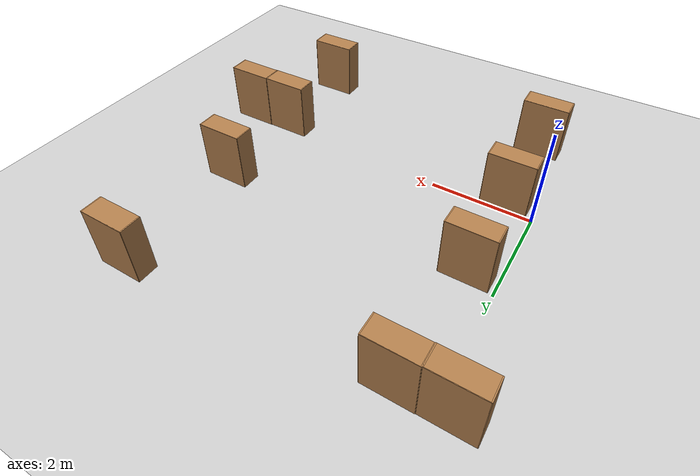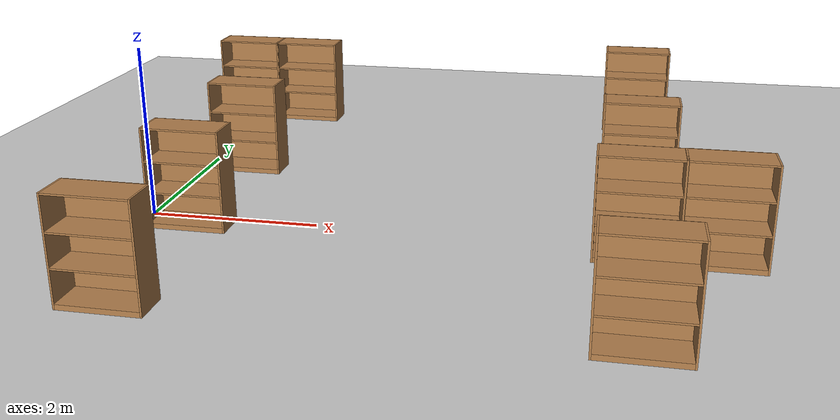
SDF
<sdf version="1.7">
 <world name="default">
  <model name="ground_plane">
   <static>1</static>
   <link name="link">
    <collision name="collision">
     <geometry><plane><normal>0 0 1</normal><size>100 100</size></plane></geometry>
     <surface>
      <contact><collide_bitmask>65535</collide_bitmask></contact>
      <friction><ode><mu>100</mu><mu2>50</mu2></ode></friction>
     </surface>
    </collision>
    <visual name="visual">
     <cast_shadows>0</cast_shadows>
     <geometry><plane><normal>0 0 1</normal><size>100 100</size></plane></geometry>
     <material>
      <script><uri>file://media/materials/scripts/gazebo.material</uri><name>Gazebo/Grey</name></script>
     </material>
    </visual>
   </link>
  </model>
  <model name="bookshelf_clone_0">
   <static>1</static>
   <link name="link">
    <inertial><mass>1</mass></inertial>
    <collision name="back">
     <pose>0 0.005 0.6 0 -0 0</pose>
     <geometry><box><size>0.9 0.01 1.2</size></box></geometry>
    </collision>
    <visual name="visual1">
     <pose>0 0.005 0.6 0 -0 0</pose>
     <geometry><box><size>0.9 0.01 1.2</size></box></geometry>
     <material>
      <script><uri>file://media/materials/scripts/gazebo.material</uri><name>Gazebo/Wood</name></script>
     </material>
    </visual>
    <collision name="left_side">
     <pose>0.45 -0.195 0.6 0 -0 0</pose>
     <geometry><box><size>0.02 0.4 1.2</size></box></geometry>
    </collision>
    <visual name="visual2">
     <pose>0.45 -0.195 0.6 0 -0 0</pose>
     <geometry><box><size>0.02 0.4 1.2</size></box></geometry>
     <material>
      <script><uri>file://media/materials/scripts/gazebo.material</uri><name>Gazebo/Wood</name></script>
     </material>
    </visual>
    <collision name="right_side">
     <pose>-0.45 -0.195 0.6 0 -0 0</pose>
     <geometry><box><size>0.02 0.4 1.2</size></box></geometry>
    </collision>
    <visual name="visual3">
     <pose>-0.45 -0.195 0.6 0 -0 0</pose>
     <geometry><box><size>0.02 0.4 1.2</size></box></geometry>
     <material>
      <script><uri>file://media/materials/scripts/gazebo.material</uri><name>Gazebo/Wood</name></script>
     </material>
    </visual>
    <collision name="bottom">
     <pose>0 -0.195 0.03 0 -0 0</pose>
     <geometry><box><size>0.88 0.4 0.06</size></box></geometry>
    </collision>
    <visual name="visual4">
     <pose>0 -0.195 0.03 0 -0 0</pose>
     <geometry><box><size>0.88 0.4 0.06</size></box></geometry>
     <material>
      <script><uri>file://media/materials/scripts/gazebo.material</uri><name>Gazebo/Wood</name></script>
     </material>
    </visual>
    <collision name="top">
     <pose>0 -0.195 1.19 0 -0 0</pose>
     <geometry><box><size>0.88 0.4 0.02</size></box></geometry>
    </collision>
    <visual name="visual5">
     <pose>0 -0.195 1.19 0 -0 0</pose>
     <geometry><box><size>0.88 0.4 0.02</size></box></geometry>
     <material>
      <script><uri>file://media/materials/scripts/gazebo.material</uri><name>Gazebo/Wood</name></script>
     </material>
    </visual>
    <collision name="low_shelf">
     <pose>0 -0.195 0.43 0 -0 0</pose>
     <geometry><box><size>0.88 0.4 0.02</size></box></geometry>
    </collision>
    <visual name="visual6">
     <pose>0 -0.195 0.43 0 -0 0</pose>
     <geometry><box><size>0.88 0.4 0.02</size></box></geometry>
     <material>
      <script><uri>file://media/materials/scripts/gazebo.material</uri><name>Gazebo/Wood</name></script>
     </material>
    </visual>
    <collision name="high_shelf">
     <pose>0 -0.195 0.8 0 -0 0</pose>
     <geometry><box><size>0.88 0.4 0.02</size></box></geometry>
    </collision>
    <visual name="visual7">
     <pose>0 -0.195 0.8 0 -0 0</pose>
     <geometry><box><size>0.88 0.4 0.02</size></box></geometry>
     <material>
      <script><uri>file://media/materials/scripts/gazebo.material</uri><name>Gazebo/Wood</name></script>
     </material>
    </visual>
   </link>
   <pose>-0.260322 4.40526 0 0 -0 0</pose>
  </model>
  <model name="bookshelf_clone_1">
   <static>1</static>
   <link name="link">
    <inertial><mass>1</mass></inertial>
    <collision name="back">
     <pose>0 0.005 0.6 0 -0 0</pose>
     <geometry><box><size>0.9 0.01 1.2</size></box></geometry>
    </collision>
    <visual name="visual1">
     <pose>0 0.005 0.6 0 -0 0</pose>
     <geometry><box><size>0.9 0.01 1.2</size></box></geometry>
     <material>
      <script><uri>file://media/materials/scripts/gazebo.material</uri><name>Gazebo/Wood</name></script>
     </material>
    </visual>
    <collision name="left_side">
     <pose>0.45 -0.195 0.6 0 -0 0</pose>
     <geometry><box><size>0.02 0.4 1.2</size></box></geometry>
    </collision>
    <visual name="visual2">
     <pose>0.45 -0.195 0.6 0 -0 0</pose>
     <geometry><box><size>0.02 0.4 1.2</size></box></geometry>
     <material>
      <script><uri>file://media/materials/scripts/gazebo.material</uri><name>Gazebo/Wood</name></script>
     </material>
    </visual>
    <collision name="right_side">
     <pose>-0.45 -0.195 0.6 0 -0 0</pose>
     <geometry><box><size>0.02 0.4 1.2</size></box></geometry>
    </collision>
    <visual name="visual3">
     <pose>-0.45 -0.195 0.6 0 -0 0</pose>
     <geometry><box><size>0.02 0.4 1.2</size></box></geometry>
     <material>
      <script><uri>file://media/materials/scripts/gazebo.material</uri><name>Gazebo/Wood</name></script>
     </material>
    </visual>
    <collision name="bottom">
     <pose>0 -0.195 0.03 0 -0 0</pose>
     <geometry><box><size>0.88 0.4 0.06</size></box></geometry>
    </collision>
    <visual name="visual4">
     <pose>0 -0.195 0.03 0 -0 0</pose>
     <geometry><box><size>0.88 0.4 0.06</size></box></geometry>
     <material>
      <script><uri>file://media/materials/scripts/gazebo.material</uri><name>Gazebo/Wood</name></script>
     </material>
    </visual>
    <collision name="top">
     <pose>0 -0.195 1.19 0 -0 0</pose>
     <geometry><box><size>0.88 0.4 0.02</size></box></geometry>
    </collision>
    <visual name="visual5">
     <pose>0 -0.195 1.19 0 -0 0</pose>
     <geometry><box><size>0.88 0.4 0.02</size></box></geometry>
     <material>
      <script><uri>file://media/materials/scripts/gazebo.material</uri><name>Gazebo/Wood</name></script>
     </material>
    </visual>
    <collision name="low_shelf">
     <pose>0 -0.195 0.43 0 -0 0</pose>
     <geometry><box><size>0.88 0.4 0.02</size></box></geometry>
    </collision>
    <visual name="visual6">
     <pose>0 -0.195 0.43 0 -0 0</pose>
     <geometry><box><size>0.88 0.4 0.02</size></box></geometry>
     <material>
      <script><uri>file://media/materials/scripts/gazebo.material</uri><name>Gazebo/Wood</name></script>
     </material>
    </visual>
    <collision name="high_shelf">
     <pose>0 -0.195 0.8 0 -0 0</pose>
     <geometry><box><size>0.88 0.4 0.02</size></box></geometry>
    </collision>
    <visual name="visual7">
     <pose>0 -0.195 0.8 0 -0 0</pose>
     <geometry><box><size>0.88 0.4 0.02</size></box></geometry>
     <material>
      <script><uri>file://media/materials/scripts/gazebo.material</uri><name>Gazebo/Wood</name></script>
     </material>
    </visual>
   </link>
   <pose>0.651315 4.41227 0 0 -0 0</pose>
  </model>
  <model name="bookshelf_clone_5">
   <static>1</static>
   <link name="link">
    <inertial><mass>1</mass></inertial>
    <collision name="back">
     <pose>0 0.005 0.6 0 -0 0</pose>
     <geometry><box><size>0.9 0.01 1.2</size></box></geometry>
    </collision>
    <visual name="visual1">
     <pose>0 0.005 0.6 0 -0 0</pose>
     <geometry><box><size>0.9 0.01 1.2</size></box></geometry>
     <material>
      <script><uri>file://media/materials/scripts/gazebo.material</uri><name>Gazebo/Wood</name></script>
     </material>
    </visual>
    <collision name="left_side">
     <pose>0.45 -0.195 0.6 0 -0 0</pose>
     <geometry><box><size>0.02 0.4 1.2</size></box></geometry>
    </collision>
    <visual name="visual2">
     <pose>0.45 -0.195 0.6 0 -0 0</pose>
     <geometry><box><size>0.02 0.4 1.2</size></box></geometry>
     <material>
      <script><uri>file://media/materials/scripts/gazebo.material</uri><name>Gazebo/Wood</name></script>
     </material>
    </visual>
    <collision name="right_side">
     <pose>-0.45 -0.195 0.6 0 -0 0</pose>
     <geometry><box><size>0.02 0.4 1.2</size></box></geometry>
    </collision>
    <visual name="visual3">
     <pose>-0.45 -0.195 0.6 0 -0 0</pose>
     <geometry><box><size>0.02 0.4 1.2</size></box></geometry>
     <material>
      <script><uri>file://media/materials/scripts/gazebo.material</uri><name>Gazebo/Wood</name></script>
     </material>
    </visual>
    <collision name="bottom">
     <pose>0 -0.195 0.03 0 -0 0</pose>
     <geometry><box><size>0.88 0.4 0.06</size></box></geometry>
    </collision>
    <visual name="visual4">
     <pose>0 -0.195 0.03 0 -0 0</pose>
     <geometry><box><size>0.88 0.4 0.06</size></box></geometry>
     <material>
      <script><uri>file://media/materials/scripts/gazebo.material</uri><name>Gazebo/Wood</name></script>
     </material>
    </visual>
    <collision name="top">
     <pose>0 -0.195 1.19 0 -0 0</pose>
     <geometry><box><size>0.88 0.4 0.02</size></box></geometry>
    </collision>
    <visual name="visual5">
     <pose>0 -0.195 1.19 0 -0 0</pose>
     <geometry><box><size>0.88 0.4 0.02</size></box></geometry>
     <material>
      <script><uri>file://media/materials/scripts/gazebo.material</uri><name>Gazebo/Wood</name></script>
     </material>
    </visual>
    <collision name="low_shelf">
     <pose>0 -0.195 0.43 0 -0 0</pose>
     <geometry><box><size>0.88 0.4 0.02</size></box></geometry>
    </collision>
    <visual name="visual6">
     <pose>0 -0.195 0.43 0 -0 0</pose>
     <geometry><box><size>0.88 0.4 0.02</size></box></geometry>
     <material>
      <script><uri>file://media/materials/scripts/gazebo.material</uri><name>Gazebo/Wood</name></script>
     </material>
    </visual>
    <collision name="high_shelf">
     <pose>0 -0.195 0.8 0 -0 0</pose>
     <geometry><box><size>0.88 0.4 0.02</size></box></geometry>
    </collision>
    <visual name="visual7">
     <pose>0 -0.195 0.8 0 -0 0</pose>
     <geometry><box><size>0.88 0.4 0.02</size></box></geometry>
     <material>
      <script><uri>file://media/materials/scripts/gazebo.material</uri><name>Gazebo/Wood</name></script>
     </material>
    </visual>
   </link>
   <pose>0.550206 1.96202 0 0 -0 0</pose>
  </model>
  <model name="bookshelf_clone_9">
   <static>1</static>
   <link name="link">
    <inertial><mass>1</mass></inertial>
    <collision name="back">
     <pose>0 0.005 0.6 0 -0 0</pose>
     <geometry><box><size>0.9 0.01 1.2</size></box></geometry>
    </collision>
    <visual name="visual1">
     <pose>0 0.005 0.6 0 -0 0</pose>
     <geometry><box><size>0.9 0.01 1.2</size></box></geometry>
     <material>
      <script><uri>file://media/materials/scripts/gazebo.material</uri><name>Gazebo/Wood</name></script>
     </material>
    </visual>
    <collision name="left_side">
     <pose>0.45 -0.195 0.6 0 -0 0</pose>
     <geometry><box><size>0.02 0.4 1.2</size></box></geometry>
    </collision>
    <visual name="visual2">
     <pose>0.45 -0.195 0.6 0 -0 0</pose>
     <geometry><box><size>0.02 0.4 1.2</size></box></geometry>
     <material>
      <script><uri>file://media/materials/scripts/gazebo.material</uri><name>Gazebo/Wood</name></script>
     </material>
    </visual>
    <collision name="right_side">
     <pose>-0.45 -0.195 0.6 0 -0 0</pose>
     <geometry><box><size>0.02 0.4 1.2</size></box></geometry>
    </collision>
    <visual name="visual3">
     <pose>-0.45 -0.195 0.6 0 -0 0</pose>
     <geometry><box><size>0.02 0.4 1.2</size></box></geometry>
     <material>
      <script><uri>file://media/materials/scripts/gazebo.material</uri><name>Gazebo/Wood</name></script>
     </material>
    </visual>
    <collision name="bottom">
     <pose>0 -0.195 0.03 0 -0 0</pose>
     <geometry><box><size>0.88 0.4 0.06</size></box></geometry>
    </collision>
    <visual name="visual4">
     <pose>0 -0.195 0.03 0 -0 0</pose>
     <geometry><box><size>0.88 0.4 0.06</size></box></geometry>
     <material>
      <script><uri>file://media/materials/scripts/gazebo.material</uri><name>Gazebo/Wood</name></script>
     </material>
    </visual>
    <collision name="top">
     <pose>0 -0.195 1.19 0 -0 0</pose>
     <geometry><box><size>0.88 0.4 0.02</size></box></geometry>
    </collision>
    <visual name="visual5">
     <pose>0 -0.195 1.19 0 -0 0</pose>
     <geometry><box><size>0.88 0.4 0.02</size></box></geometry>
     <material>
      <script><uri>file://media/materials/scripts/gazebo.material</uri><name>Gazebo/Wood</name></script>
     </material>
    </visual>
    <collision name="low_shelf">
     <pose>0 -0.195 0.43 0 -0 0</pose>
     <geometry><box><size>0.88 0.4 0.02</size></box></geometry>
    </collision>
    <visual name="visual6">
     <pose>0 -0.195 0.43 0 -0 0</pose>
     <geometry><box><size>0.88 0.4 0.02</size></box></geometry>
     <material>
      <script><uri>file://media/materials/scripts/gazebo.material</uri><name>Gazebo/Wood</name></script>
     </material>
    </visual>
    <collision name="high_shelf">
     <pose>0 -0.195 0.8 0 -0 0</pose>
     <geometry><box><size>0.88 0.4 0.02</size></box></geometry>
    </collision>
    <visual name="visual7">
     <pose>0 -0.195 0.8 0 -0 0</pose>
     <geometry><box><size>0.88 0.4 0.02</size></box></geometry>
     <material>
      <script><uri>file://media/materials/scripts/gazebo.material</uri><name>Gazebo/Wood</name></script>
     </material>
    </visual>
   </link>
   <pose>0.583524 -0.025922 0 0 -0 0</pose>
  </model>
  <model name="bookshelf_clone_13">
   <static>1</static>
   <link name="link">
    <inertial><mass>1</mass></inertial>
    <collision name="back">
     <pose>0 0.005 0.6 0 -0 0</pose>
     <geometry><box><size>0.9 0.01 1.2</size></box></geometry>
    </collision>
    <visual name="visual1">
     <pose>0 0.005 0.6 0 -0 0</pose>
     <geometry><box><size>0.9 0.01 1.2</size></box></geometry>
     <material>
      <script><uri>file://media/materials/scripts/gazebo.material</uri><name>Gazebo/Wood</name></script>
     </material>
    </visual>
    <collision name="left_side">
     <pose>0.45 -0.195 0.6 0 -0 0</pose>
     <geometry><box><size>0.02 0.4 1.2</size></box></geometry>
    </collision>
    <visual name="visual2">
     <pose>0.45 -0.195 0.6 0 -0 0</pose>
     <geometry><box><size>0.02 0.4 1.2</size></box></geometry>
     <material>
      <script><uri>file://media/materials/scripts/gazebo.material</uri><name>Gazebo/Wood</name></script>
     </material>
    </visual>
    <collision name="right_side">
     <pose>-0.45 -0.195 0.6 0 -0 0</pose>
     <geometry><box><size>0.02 0.4 1.2</size></box></geometry>
    </collision>
    <visual name="visual3">
     <pose>-0.45 -0.195 0.6 0 -0 0</pose>
     <geometry><box><size>0.02 0.4 1.2</size></box></geometry>
     <material>
      <script><uri>file://media/materials/scripts/gazebo.material</uri><name>Gazebo/Wood</name></script>
     </material>
    </visual>
    <collision name="bottom">
     <pose>0 -0.195 0.03 0 -0 0</pose>
     <geometry><box><size>0.88 0.4 0.06</size></box></geometry>
    </collision>
    <visual name="visual4">
     <pose>0 -0.195 0.03 0 -0 0</pose>
     <geometry><box><size>0.88 0.4 0.06</size></box></geometry>
     <material>
      <script><uri>file://media/materials/scripts/gazebo.material</uri><name>Gazebo/Wood</name></script>
     </material>
    </visual>
    <collision name="top">
     <pose>0 -0.195 1.19 0 -0 0</pose>
     <geometry><box><size>0.88 0.4 0.02</size></box></geometry>
    </collision>
    <visual name="visual5">
     <pose>0 -0.195 1.19 0 -0 0</pose>
     <geometry><box><size>0.88 0.4 0.02</size></box></geometry>
     <material>
      <script><uri>file://media/materials/scripts/gazebo.material</uri><name>Gazebo/Wood</name></script>
     </material>
    </visual>
    <collision name="low_shelf">
     <pose>0 -0.195 0.43 0 -0 0</pose>
     <geometry><box><size>0.88 0.4 0.02</size></box></geometry>
    </collision>
    <visual name="visual6">
     <pose>0 -0.195 0.43 0 -0 0</pose>
     <geometry><box><size>0.88 0.4 0.02</size></box></geometry>
     <material>
      <script><uri>file://media/materials/scripts/gazebo.material</uri><name>Gazebo/Wood</name></script>
     </material>
    </visual>
    <collision name="high_shelf">
     <pose>0 -0.195 0.8 0 -0 0</pose>
     <geometry><box><size>0.88 0.4 0.02</size></box></geometry>
    </collision>
    <visual name="visual7">
     <pose>0 -0.195 0.8 0 -0 0</pose>
     <geometry><box><size>0.88 0.4 0.02</size></box></geometry>
     <material>
      <script><uri>file://media/materials/scripts/gazebo.material</uri><name>Gazebo/Wood</name></script>
     </material>
    </visual>
   </link>
   <pose>0.582601 -2.04425 0 0 -0 0</pose>
  </model>
  <model name="bookshelf_clone_17">
   <static>1</static>
   <link name="link">
    <inertial><mass>1</mass></inertial>
    <collision name="back">
     <pose>0 0.005 0.6 0 -0 0</pose>
     <geometry><box><size>0.9 0.01 1.2</size></box></geometry>
    </collision>
    <visual name="visual1">
     <pose>0 0.005 0.6 0 -0 0</pose>
     <geometry><box><size>0.9 0.01 1.2</size></box></geometry>
     <material>
      <script><uri>file://media/materials/scripts/gazebo.material</uri><name>Gazebo/Wood</name></script>
     </material>
    </visual>
    <collision name="left_side">
     <pose>0.45 -0.195 0.6 0 -0 0</pose>
     <geometry><box><size>0.02 0.4 1.2</size></box></geometry>
    </collision>
    <visual name="visual2">
     <pose>0.45 -0.195 0.6 0 -0 0</pose>
     <geometry><box><size>0.02 0.4 1.2</size></box></geometry>
     <material>
      <script><uri>file://media/materials/scripts/gazebo.material</uri><name>Gazebo/Wood</name></script>
     </material>
    </visual>
    <collision name="right_side">
     <pose>-0.45 -0.195 0.6 0 -0 0</pose>
     <geometry><box><size>0.02 0.4 1.2</size></box></geometry>
    </collision>
    <visual name="visual3">
     <pose>-0.45 -0.195 0.6 0 -0 0</pose>
     <geometry><box><size>0.02 0.4 1.2</size></box></geometry>
     <material>
      <script><uri>file://media/materials/scripts/gazebo.material</uri><name>Gazebo/Wood</name></script>
     </material>
    </visual>
    <collision name="bottom">
     <pose>0 -0.195 0.03 0 -0 0</pose>
     <geometry><box><size>0.88 0.4 0.06</size></box></geometry>
    </collision>
    <visual name="visual4">
     <pose>0 -0.195 0.03 0 -0 0</pose>
     <geometry><box><size>0.88 0.4 0.06</size></box></geometry>
     <material>
      <script><uri>file://media/materials/scripts/gazebo.material</uri><name>Gazebo/Wood</name></script>
     </material>
    </visual>
    <collision name="top">
     <pose>0 -0.195 1.19 0 -0 0</pose>
     <geometry><box><size>0.88 0.4 0.02</size></box></geometry>
    </collision>
    <visual name="visual5">
     <pose>0 -0.195 1.19 0 -0 0</pose>
     <geometry><box><size>0.88 0.4 0.02</size></box></geometry>
     <material>
      <script><uri>file://media/materials/scripts/gazebo.material</uri><name>Gazebo/Wood</name></script>
     </material>
    </visual>
    <collision name="low_shelf">
     <pose>0 -0.195 0.43 0 -0 0</pose>
     <geometry><box><size>0.88 0.4 0.02</size></box></geometry>
    </collision>
    <visual name="visual6">
     <pose>0 -0.195 0.43 0 -0 0</pose>
     <geometry><box><size>0.88 0.4 0.02</size></box></geometry>
     <material>
      <script><uri>file://media/materials/scripts/gazebo.material</uri><name>Gazebo/Wood</name></script>
     </material>
    </visual>
    <collision name="high_shelf">
     <pose>0 -0.195 0.8 0 -0 0</pose>
     <geometry><box><size>0.88 0.4 0.02</size></box></geometry>
    </collision>
    <visual name="visual7">
     <pose>0 -0.195 0.8 0 -0 0</pose>
     <geometry><box><size>0.88 0.4 0.02</size></box></geometry>
     <material>
      <script><uri>file://media/materials/scripts/gazebo.material</uri><name>Gazebo/Wood</name></script>
     </material>
    </visual>
   </link>
   <pose>5.61934 4.75447 0 0 -0 0</pose>
  </model>
  <model name="bookshelf_clone_21">
   <static>1</static>
   <link name="link">
    <inertial><mass>1</mass></inertial>
    <collision name="back">
     <pose>0 0.005 0.6 0 -0 0</pose>
     <geometry><box><size>0.9 0.01 1.2</size></box></geometry>
    </collision>
    <visual name="visual1">
     <pose>0 0.005 0.6 0 -0 0</pose>
     <geometry><box><size>0.9 0.01 1.2</size></box></geometry>
     <material>
      <script><uri>file://media/materials/scripts/gazebo.material</uri><name>Gazebo/Wood</name></script>
     </material>
    </visual>
    <collision name="left_side">
     <pose>0.45 -0.195 0.6 0 -0 0</pose>
     <geometry><box><size>0.02 0.4 1.2</size></box></geometry>
    </collision>
    <visual name="visual2">
     <pose>0.45 -0.195 0.6 0 -0 0</pose>
     <geometry><box><size>0.02 0.4 1.2</size></box></geometry>
     <material>
      <script><uri>file://media/materials/scripts/gazebo.material</uri><name>Gazebo/Wood</name></script>
     </material>
    </visual>
    <collision name="right_side">
     <pose>-0.45 -0.195 0.6 0 -0 0</pose>
     <geometry><box><size>0.02 0.4 1.2</size></box></geometry>
    </collision>
    <visual name="visual3">
     <pose>-0.45 -0.195 0.6 0 -0 0</pose>
     <geometry><box><size>0.02 0.4 1.2</size></box></geometry>
     <material>
      <script><uri>file://media/materials/scripts/gazebo.material</uri><name>Gazebo/Wood</name></script>
     </material>
    </visual>
    <collision name="bottom">
     <pose>0 -0.195 0.03 0 -0 0</pose>
     <geometry><box><size>0.88 0.4 0.06</size></box></geometry>
    </collision>
    <visual name="visual4">
     <pose>0 -0.195 0.03 0 -0 0</pose>
     <geometry><box><size>0.88 0.4 0.06</size></box></geometry>
     <material>
      <script><uri>file://media/materials/scripts/gazebo.material</uri><name>Gazebo/Wood</name></script>
     </material>
    </visual>
    <collision name="top">
     <pose>0 -0.195 1.19 0 -0 0</pose>
     <geometry><box><size>0.88 0.4 0.02</size></box></geometry>
    </collision>
    <visual name="visual5">
     <pose>0 -0.195 1.19 0 -0 0</pose>
     <geometry><box><size>0.88 0.4 0.02</size></box></geometry>
     <material>
      <script><uri>file://media/materials/scripts/gazebo.material</uri><name>Gazebo/Wood</name></script>
     </material>
    </visual>
    <collision name="low_shelf">
     <pose>0 -0.195 0.43 0 -0 0</pose>
     <geometry><box><size>0.88 0.4 0.02</size></box></geometry>
    </collision>
    <visual name="visual6">
     <pose>0 -0.195 0.43 0 -0 0</pose>
     <geometry><box><size>0.88 0.4 0.02</size></box></geometry>
     <material>
      <script><uri>file://media/materials/scripts/gazebo.material</uri><name>Gazebo/Wood</name></script>
     </material>
    </visual>
    <collision name="high_shelf">
     <pose>0 -0.195 0.8 0 -0 0</pose>
     <geometry><box><size>0.88 0.4 0.02</size></box></geometry>
    </collision>
    <visual name="visual7">
     <pose>0 -0.195 0.8 0 -0 0</pose>
     <geometry><box><size>0.88 0.4 0.02</size></box></geometry>
     <material>
      <script><uri>file://media/materials/scripts/gazebo.material</uri><name>Gazebo/Wood</name></script>
     </material>
    </visual>
   </link>
   <pose>5.64089 1.98739 0 0 -0 0</pose>
  </model>
  <model name="bookshelf_clone_24">
   <static>1</static>
   <link name="link">
    <inertial><mass>1</mass></inertial>
    <collision name="back">
     <pose>0 0.005 0.6 0 -0 0</pose>
     <geometry><box><size>0.9 0.01 1.2</size></box></geometry>
    </collision>
    <visual name="visual1">
     <pose>0 0.005 0.6 0 -0 0</pose>
     <geometry><box><size>0.9 0.01 1.2</size></box></geometry>
     <material>
      <script><uri>file://media/materials/scripts/gazebo.material</uri><name>Gazebo/Wood</name></script>
     </material>
    </visual>
    <collision name="left_side">
     <pose>0.45 -0.195 0.6 0 -0 0</pose>
     <geometry><box><size>0.02 0.4 1.2</size></box></geometry>
    </collision>
    <visual name="visual2">
     <pose>0.45 -0.195 0.6 0 -0 0</pose>
     <geometry><box><size>0.02 0.4 1.2</size></box></geometry>
     <material>
      <script><uri>file://media/materials/scripts/gazebo.material</uri><name>Gazebo/Wood</name></script>
     </material>
    </visual>
    <collision name="right_side">
     <pose>-0.45 -0.195 0.6 0 -0 0</pose>
     <geometry><box><size>0.02 0.4 1.2</size></box></geometry>
    </collision>
    <visual name="visual3">
     <pose>-0.45 -0.195 0.6 0 -0 0</pose>
     <geometry><box><size>0.02 0.4 1.2</size></box></geometry>
     <material>
      <script><uri>file://media/materials/scripts/gazebo.material</uri><name>Gazebo/Wood</name></script>
     </material>
    </visual>
    <collision name="bottom">
     <pose>0 -0.195 0.03 0 -0 0</pose>
     <geometry><box><size>0.88 0.4 0.06</size></box></geometry>
    </collision>
    <visual name="visual4">
     <pose>0 -0.195 0.03 0 -0 0</pose>
     <geometry><box><size>0.88 0.4 0.06</size></box></geometry>
     <material>
      <script><uri>file://media/materials/scripts/gazebo.material</uri><name>Gazebo/Wood</name></script>
     </material>
    </visual>
    <collision name="top">
     <pose>0 -0.195 1.19 0 -0 0</pose>
     <geometry><box><size>0.88 0.4 0.02</size></box></geometry>
    </collision>
    <visual name="visual5">
     <pose>0 -0.195 1.19 0 -0 0</pose>
     <geometry><box><size>0.88 0.4 0.02</size></box></geometry>
     <material>
      <script><uri>file://media/materials/scripts/gazebo.material</uri><name>Gazebo/Wood</name></script>
     </material>
    </visual>
    <collision name="low_shelf">
     <pose>0 -0.195 0.43 0 -0 0</pose>
     <geometry><box><size>0.88 0.4 0.02</size></box></geometry>
    </collision>
    <visual name="visual6">
     <pose>0 -0.195 0.43 0 -0 0</pose>
     <geometry><box><size>0.88 0.4 0.02</size></box></geometry>
     <material>
      <script><uri>file://media/materials/scripts/gazebo.material</uri><name>Gazebo/Wood</name></script>
     </material>
    </visual>
    <collision name="high_shelf">
     <pose>0 -0.195 0.8 0 -0 0</pose>
     <geometry><box><size>0.88 0.4 0.02</size></box></geometry>
    </collision>
    <visual name="visual7">
     <pose>0 -0.195 0.8 0 -0 0</pose>
     <geometry><box><size>0.88 0.4 0.02</size></box></geometry>
     <material>
      <script><uri>file://media/materials/scripts/gazebo.material</uri><name>Gazebo/Wood</name></script>
     </material>
    </visual>
   </link>
   <pose>6.5072 -0.004348 0 0 -0 0</pose>
  </model>
  <model name="bookshelf_clone_25">
   <static>1</static>
   <link name="link">
    <inertial><mass>1</mass></inertial>
    <collision name="back">
     <pose>0 0.005 0.6 0 -0 0</pose>
     <geometry><box><size>0.9 0.01 1.2</size></box></geometry>
    </collision>
    <visual name="visual1">
     <pose>0 0.005 0.6 0 -0 0</pose>
     <geometry><box><size>0.9 0.01 1.2</size></box></geometry>
     <material>
      <script><uri>file://media/materials/scripts/gazebo.material</uri><name>Gazebo/Wood</name></script>
     </material>
    </visual>
    <collision name="left_side">
     <pose>0.45 -0.195 0.6 0 -0 0</pose>
     <geometry><box><size>0.02 0.4 1.2</size></box></geometry>
    </collision>
    <visual name="visual2">
     <pose>0.45 -0.195 0.6 0 -0 0</pose>
     <geometry><box><size>0.02 0.4 1.2</size></box></geometry>
     <material>
      <script><uri>file://media/materials/scripts/gazebo.material</uri><name>Gazebo/Wood</name></script>
     </material>
    </visual>
    <collision name="right_side">
     <pose>-0.45 -0.195 0.6 0 -0 0</pose>
     <geometry><box><size>0.02 0.4 1.2</size></box></geometry>
    </collision>
    <visual name="visual3">
     <pose>-0.45 -0.195 0.6 0 -0 0</pose>
     <geometry><box><size>0.02 0.4 1.2</size></box></geometry>
     <material>
      <script><uri>file://media/materials/scripts/gazebo.material</uri><name>Gazebo/Wood</name></script>
     </material>
    </visual>
    <collision name="bottom">
     <pose>0 -0.195 0.03 0 -0 0</pose>
     <geometry><box><size>0.88 0.4 0.06</size></box></geometry>
    </collision>
    <visual name="visual4">
     <pose>0 -0.195 0.03 0 -0 0</pose>
     <geometry><box><size>0.88 0.4 0.06</size></box></geometry>
     <material>
      <script><uri>file://media/materials/scripts/gazebo.material</uri><name>Gazebo/Wood</name></script>
     </material>
    </visual>
    <collision name="top">
     <pose>0 -0.195 1.19 0 -0 0</pose>
     <geometry><box><size>0.88 0.4 0.02</size></box></geometry>
    </collision>
    <visual name="visual5">
     <pose>0 -0.195 1.19 0 -0 0</pose>
     <geometry><box><size>0.88 0.4 0.02</size></box></geometry>
     <material>
      <script><uri>file://media/materials/scripts/gazebo.material</uri><name>Gazebo/Wood</name></script>
     </material>
    </visual>
    <collision name="low_shelf">
     <pose>0 -0.195 0.43 0 -0 0</pose>
     <geometry><box><size>0.88 0.4 0.02</size></box></geometry>
    </collision>
    <visual name="visual6">
     <pose>0 -0.195 0.43 0 -0 0</pose>
     <geometry><box><size>0.88 0.4 0.02</size></box></geometry>
     <material>
      <script><uri>file://media/materials/scripts/gazebo.material</uri><name>Gazebo/Wood</name></script>
     </material>
    </visual>
    <collision name="high_shelf">
     <pose>0 -0.195 0.8 0 -0 0</pose>
     <geometry><box><size>0.88 0.4 0.02</size></box></geometry>
    </collision>
    <visual name="visual7">
     <pose>0 -0.195 0.8 0 -0 0</pose>
     <geometry><box><size>0.88 0.4 0.02</size></box></geometry>
     <material>
      <script><uri>file://media/materials/scripts/gazebo.material</uri><name>Gazebo/Wood</name></script>
     </material>
    </visual>
   </link>
   <pose>5.60166 -0.013164 0 0 -0 0</pose>
  </model>
  <model name="bookshelf_clone_29">
   <static>1</static>
   <link name="link">
    <inertial><mass>1</mass></inertial>
    <collision name="back">
     <pose>0 0.005 0.6 0 -0 0</pose>
     <geometry><box><size>0.9 0.01 1.2</size></box></geometry>
    </collision>
    <visual name="visual1">
     <pose>0 0.005 0.6 0 -0 0</pose>
     <geometry><box><size>0.9 0.01 1.2</size></box></geometry>
     <material>
      <script><uri>file://media/materials/scripts/gazebo.material</uri><name>Gazebo/Wood</name></script>
     </material>
    </visual>
    <collision name="left_side">
     <pose>0.45 -0.195 0.6 0 -0 0</pose>
     <geometry><box><size>0.02 0.4 1.2</size></box></geometry>
    </collision>
    <visual name="visual2">
     <pose>0.45 -0.195 0.6 0 -0 0</pose>
     <geometry><box><size>0.02 0.4 1.2</size></box></geometry>
     <material>
      <script><uri>file://media/materials/scripts/gazebo.material</uri><name>Gazebo/Wood</name></script>
     </material>
    </visual>
    <collision name="right_side">
     <pose>-0.45 -0.195 0.6 0 -0 0</pose>
     <geometry><box><size>0.02 0.4 1.2</size></box></geometry>
    </collision>
    <visual name="visual3">
     <pose>-0.45 -0.195 0.6 0 -0 0</pose>
     <geometry><box><size>0.02 0.4 1.2</size></box></geometry>
     <material>
      <script><uri>file://media/materials/scripts/gazebo.material</uri><name>Gazebo/Wood</name></script>
     </material>
    </visual>
    <collision name="bottom">
     <pose>0 -0.195 0.03 0 -0 0</pose>
     <geometry><box><size>0.88 0.4 0.06</size></box></geometry>
    </collision>
    <visual name="visual4">
     <pose>0 -0.195 0.03 0 -0 0</pose>
     <geometry><box><size>0.88 0.4 0.06</size></box></geometry>
     <material>
      <script><uri>file://media/materials/scripts/gazebo.material</uri><name>Gazebo/Wood</name></script>
     </material>
    </visual>
    <collision name="top">
     <pose>0 -0.195 1.19 0 -0 0</pose>
     <geometry><box><size>0.88 0.4 0.02</size></box></geometry>
    </collision>
    <visual name="visual5">
     <pose>0 -0.195 1.19 0 -0 0</pose>
     <geometry><box><size>0.88 0.4 0.02</size></box></geometry>
     <material>
      <script><uri>file://media/materials/scripts/gazebo.material</uri><name>Gazebo/Wood</name></script>
     </material>
    </visual>
    <collision name="low_shelf">
     <pose>0 -0.195 0.43 0 -0 0</pose>
     <geometry><box><size>0.88 0.4 0.02</size></box></geometry>
    </collision>
    <visual name="visual6">
     <pose>0 -0.195 0.43 0 -0 0</pose>
     <geometry><box><size>0.88 0.4 0.02</size></box></geometry>
     <material>
      <script><uri>file://media/materials/scripts/gazebo.material</uri><name>Gazebo/Wood</name></script>
     </material>
    </visual>
    <collision name="high_shelf">
     <pose>0 -0.195 0.8 0 -0 0</pose>
     <geometry><box><size>0.88 0.4 0.02</size></box></geometry>
    </collision>
    <visual name="visual7">
     <pose>0 -0.195 0.8 0 -0 0</pose>
     <geometry><box><size>0.88 0.4 0.02</size></box></geometry>
     <material>
      <script><uri>file://media/materials/scripts/gazebo.material</uri><name>Gazebo/Wood</name></script>
     </material>
    </visual>
   </link>
   <pose>5.65177 -2.01217 0 0 -0 0</pose>
  </model>
 </world>
</sdf>
